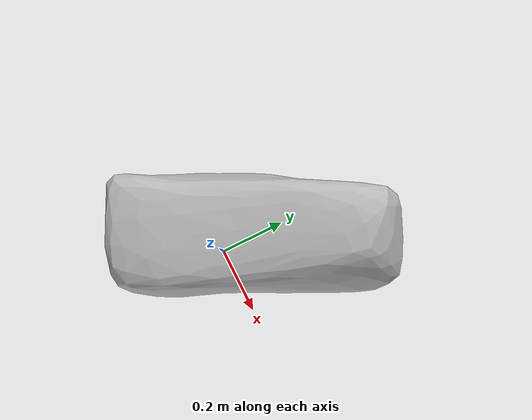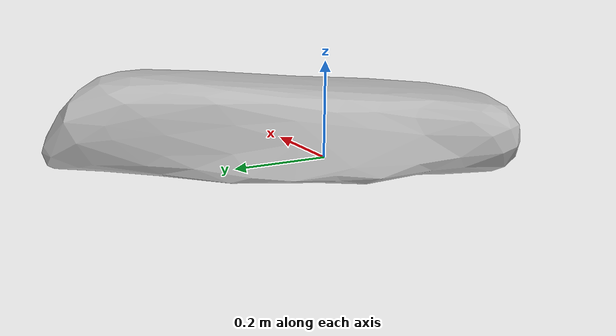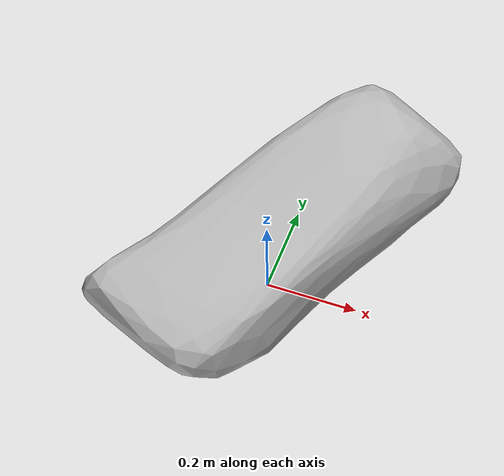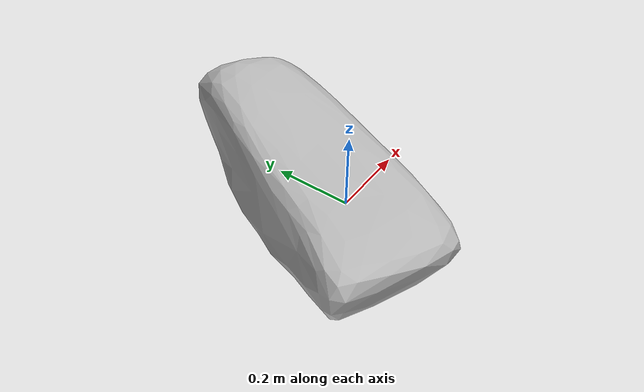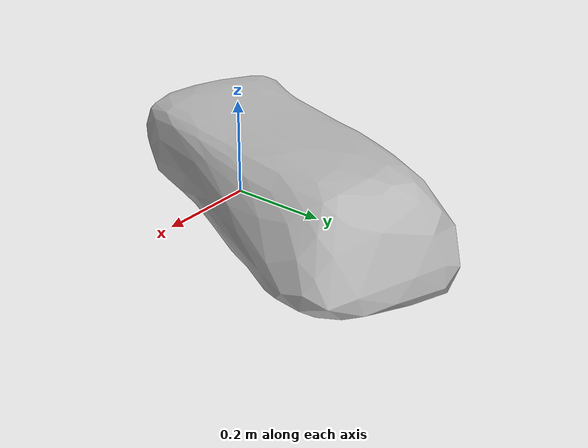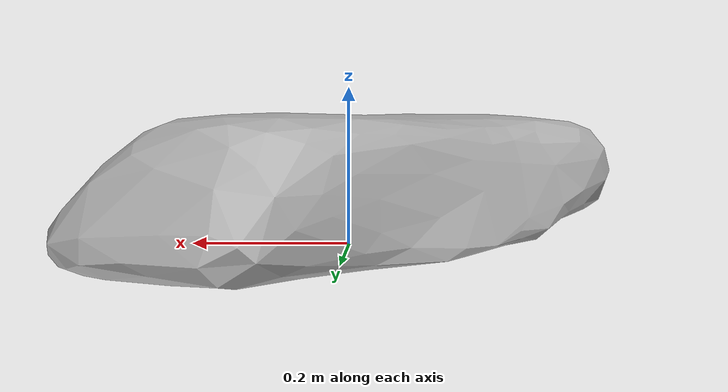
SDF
<?xml version="1.0" ?>
<sdf version="1.4">
    <model name="stone5">
      <pose>0 0 0 0 0 0</pose>
        <static>false</static>
	  <link name="stone5_link">
	    <collision name="stone5_collision">
	      <geometry>
                <mesh>
		  <uri>model://stone5/meshes/Intresto_rock_for_landscape_03.dae</uri>
                    <scale>2 2 1</scale>
		</mesh>
	      </geometry>
	    </collision>

	    <visual name="stone5_visual">
	      <geometry>
            	<mesh>
		  <uri>model://stone5/meshes/Intresto_rock_for_landscape_03.dae</uri>
                  <scale>2 2 1</scale>
		</mesh>
	      </geometry>
	    </visual>

    </link>
  </model>
</sdf>
